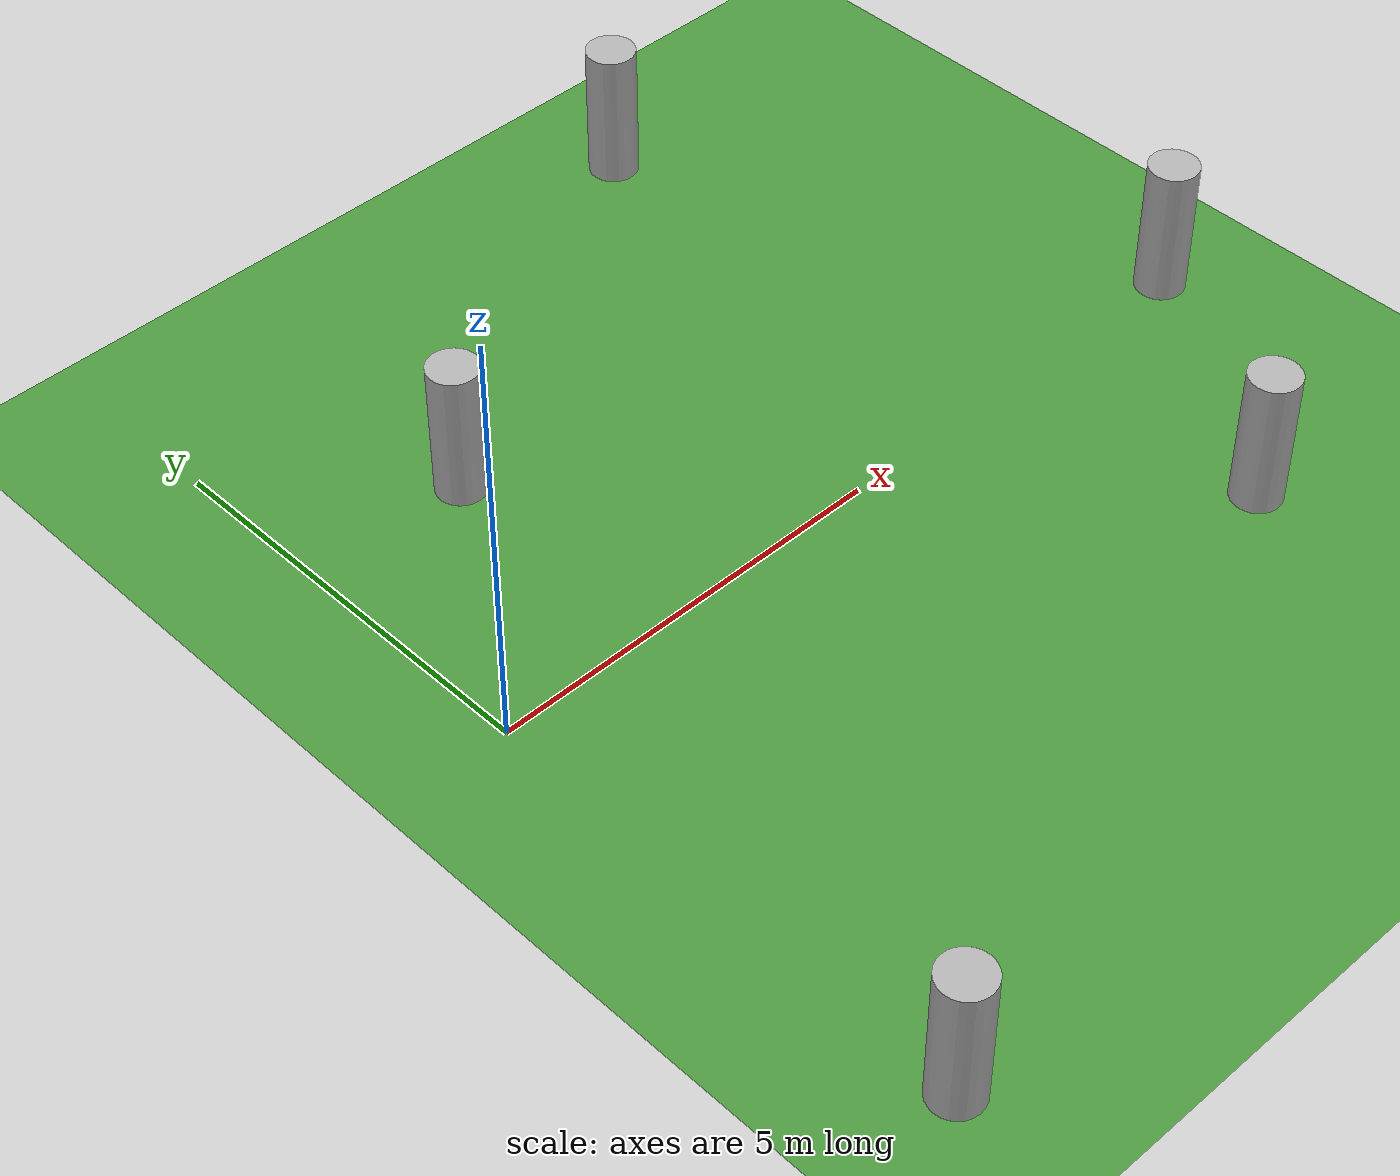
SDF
<sdf version="1.7">
 <world name="simple">
  <model name="ground_plane">
   <static>1</static>
   <link name="link">
    <collision name="collision">
     <geometry><plane><normal>0 0 1</normal><size>100 100</size></plane></geometry>
     <surface>
      <contact><collide_bitmask>65535</collide_bitmask></contact>
      <friction><ode><mu>100</mu><mu2>50</mu2></ode></friction>
     </surface>
    </collision>
    <visual name="visual">
     <cast_shadows>0</cast_shadows>
     <geometry><plane><normal>0 0 1</normal><size>100 100</size></plane></geometry>
     <material>
      <script><uri>file://media/materials/scripts/gazebo.material</uri><name>Gazebo/Grass</name></script>
     </material>
    </visual>
   </link>
  </model>
  <model name="ped_1">
   <pose>7 6 0.85 0 0 0</pose>
   <link name="link">
    <inertial>
     <mass>1</mass>
     <inertia><ixx>0.145833</ixx><ixy>0</ixy><ixz>0</ixz><iyy>0.145833</iyy><iyz>0</iyz><izz>0.125</izz></inertia>
    </inertial>
    <visual name="visual">
     <geometry><cylinder><radius>0.3</radius><length>1.7</length></cylinder></geometry>
     <material>
      <script><name>Gazebo/PioneerBody</name><uri>file://media/materials/scripts/gazebo.material</uri></script>
      <shader type="pixel"><normal_map>__default__</normal_map></shader>
      <ambient>0.3 0.3 0.3 1</ambient>
      <diffuse>0.7 0.7 0.7 1</diffuse>
      <specular>0.01 0.01 0.01 1</specular>
      <emissive>0 0 0 1</emissive>
     </material>
    </visual>
    <collision name="collision">
     <geometry><cylinder><radius>0.3</radius><length>1.7</length></cylinder></geometry>
     <surface>
      <friction>
       <ode><mu>1</mu><mu2>1</mu2><fdir1>0 0 0</fdir1><slip1>0</slip1><slip2>0</slip2></ode>
       <torsional>
        <coefficient>1</coefficient>
        <patch_radius>0</patch_radius>
        <surface_radius>0</surface_radius>
        <use_patch_radius>1</use_patch_radius>
        <ode><slip>0</slip></ode>
       </torsional>
      </friction>
      <bounce><restitution_coefficient>0</restitution_coefficient><threshold>1e+06</threshold></bounce>
      <contact>
       <collide_without_contact>0</collide_without_contact>
       <collide_without_contact_bitmask>1</collide_without_contact_bitmask>
       <collide_bitmask>1</collide_bitmask>
       <ode>
        <soft_cfm>0</soft_cfm>
        <soft_erp>0.2</soft_erp>
        <kp>1e+13</kp>
        <kd>1</kd>
        <max_vel>0.01</max_vel>
        <min_depth>0</min_depth>
       </ode>
       <bullet>
        <split_impulse>1</split_impulse>
        <split_impulse_penetration_threshold>-0.01</split_impulse_penetration_threshold>
        <soft_cfm>0</soft_cfm>
        <soft_erp>0.2</soft_erp>
        <kp>1e+13</kp>
        <kd>1</kd>
       </bullet>
      </contact>
     </surface>
    </collision>
   </link>
   <static>1</static>
   <plugin name="model_move_1" filename="libmodel_move.so">
    <goals>
     <pose>0 6 0.85 0 0 0</pose>
     <pose>7 6 0.85 0 0 0</pose>
     <pose>0 6 0.85 0 0 0</pose>
     <pose>7 6 0.85 0 0 0</pose>
     <pose>0 6 0.85 0 0 0</pose>
     <pose>7 6 0.85 0 0 0</pose>
     <pose>0 6 0.85 0 0 0</pose>
     <pose>7 6 0.85 0 0 0</pose>
     <pose>0 6 0.85 0 0 0</pose>
     <pose>7 6 0.85 0 0 0</pose>
    </goals>
   </plugin>
   <plugin name="gazebo_ros_p3d_1" filename="libgazebo_ros_p3d.so">
    <ros><namespace>crowd</namespace><remapping>odom:=ped_1</remapping></ros>
    <body_name>link</body_name>
    <update_rate>10</update_rate>
    <xyz_offset>0 0 0</xyz_offset>
    <rpy_offset>0 0 0</rpy_offset>
    <gaussian_noise>0.00</gaussian_noise>
   </plugin>
  </model>
  <model name="ped_2">
   <pose>2 3 0.85 0 0 0</pose>
   <link name="link">
    <inertial>
     <mass>1</mass>
     <inertia><ixx>0.145833</ixx><ixy>0</ixy><ixz>0</ixz><iyy>0.145833</iyy><iyz>0</iyz><izz>0.125</izz></inertia>
    </inertial>
    <visual name="visual">
     <geometry><cylinder><radius>0.3</radius><length>1.7</length></cylinder></geometry>
     <material>
      <script><name>Gazebo/PioneerBody</name><uri>file://media/materials/scripts/gazebo.material</uri></script>
      <shader type="pixel"><normal_map>__default__</normal_map></shader>
      <ambient>0.3 0.3 0.3 1</ambient>
      <diffuse>0.7 0.7 0.7 1</diffuse>
      <specular>0.01 0.01 0.01 1</specular>
      <emissive>0 0 0 1</emissive>
     </material>
    </visual>
    <collision name="collision">
     <geometry><cylinder><radius>0.3</radius><length>1.7</length></cylinder></geometry>
     <surface>
      <friction>
       <ode><mu>1</mu><mu2>1</mu2><fdir1>0 0 0</fdir1><slip1>0</slip1><slip2>0</slip2></ode>
       <torsional>
        <coefficient>1</coefficient>
        <patch_radius>0</patch_radius>
        <surface_radius>0</surface_radius>
        <use_patch_radius>1</use_patch_radius>
        <ode><slip>0</slip></ode>
       </torsional>
      </friction>
      <bounce><restitution_coefficient>0</restitution_coefficient><threshold>1e+06</threshold></bounce>
      <contact>
       <collide_without_contact>0</collide_without_contact>
       <collide_without_contact_bitmask>1</collide_without_contact_bitmask>
       <collide_bitmask>1</collide_bitmask>
       <ode>
        <soft_cfm>0</soft_cfm>
        <soft_erp>0.2</soft_erp>
        <kp>1e+13</kp>
        <kd>1</kd>
        <max_vel>0.01</max_vel>
        <min_depth>0</min_depth>
       </ode>
       <bullet>
        <split_impulse>1</split_impulse>
        <split_impulse_penetration_threshold>-0.01</split_impulse_penetration_threshold>
        <soft_cfm>0</soft_cfm>
        <soft_erp>0.2</soft_erp>
        <kp>1e+13</kp>
        <kd>1</kd>
       </bullet>
      </contact>
     </surface>
    </collision>
   </link>
   <static>1</static>
   <plugin name="model_move_2" filename="libmodel_move.so">
    <goals>
     <pose>8 3 0.85 0 0 0</pose>
     <pose>2 3 0.85 0 0 0</pose>
     <pose>8 3 0.85 0 0 0</pose>
     <pose>2 3 0.85 0 0 0</pose>
     <pose>8 3 0.85 0 0 0</pose>
     <pose>2 3 0.85 0 0 0</pose>
     <pose>8 3 0.85 0 0 0</pose>
     <pose>2 3 0.85 0 0 0</pose>
     <pose>8 3 0.85 0 0 0</pose>
     <pose>2 3 0.85 0 0 0</pose>
    </goals>
   </plugin>
   <plugin name="gazebo_ros_p3d_2" filename="libgazebo_ros_p3d.so">
    <ros><namespace>crowd</namespace><remapping>odom:=ped_2</remapping></ros>
    <body_name>link</body_name>
    <update_rate>10</update_rate>
    <xyz_offset>0 0 0</xyz_offset>
    <rpy_offset>0 0 0</rpy_offset>
    <gaussian_noise>0.00</gaussian_noise>
   </plugin>
  </model>
  <model name="ped_3">
   <pose>10 0 0.85 0 0 0</pose>
   <link name="link">
    <inertial>
     <mass>1</mass>
     <inertia><ixx>0.145833</ixx><ixy>0</ixy><ixz>0</ixz><iyy>0.145833</iyy><iyz>0</iyz><izz>0.125</izz></inertia>
    </inertial>
    <visual name="visual">
     <geometry><cylinder><radius>0.3</radius><length>1.7</length></cylinder></geometry>
     <material>
      <script><name>Gazebo/PioneerBody</name><uri>file://media/materials/scripts/gazebo.material</uri></script>
      <shader type="pixel"><normal_map>__default__</normal_map></shader>
      <ambient>0.3 0.3 0.3 1</ambient>
      <diffuse>0.7 0.7 0.7 1</diffuse>
      <specular>0.01 0.01 0.01 1</specular>
      <emissive>0 0 0 1</emissive>
     </material>
    </visual>
    <collision name="collision">
     <geometry><cylinder><radius>0.3</radius><length>1.7</length></cylinder></geometry>
     <surface>
      <friction>
       <ode><mu>1</mu><mu2>1</mu2><fdir1>0 0 0</fdir1><slip1>0</slip1><slip2>0</slip2></ode>
       <torsional>
        <coefficient>1</coefficient>
        <patch_radius>0</patch_radius>
        <surface_radius>0</surface_radius>
        <use_patch_radius>1</use_patch_radius>
        <ode><slip>0</slip></ode>
       </torsional>
      </friction>
      <bounce><restitution_coefficient>0</restitution_coefficient><threshold>1e+06</threshold></bounce>
      <contact>
       <collide_without_contact>0</collide_without_contact>
       <collide_without_contact_bitmask>1</collide_without_contact_bitmask>
       <collide_bitmask>1</collide_bitmask>
       <ode>
        <soft_cfm>0</soft_cfm>
        <soft_erp>0.2</soft_erp>
        <kp>1e+13</kp>
        <kd>1</kd>
        <max_vel>0.01</max_vel>
        <min_depth>0</min_depth>
       </ode>
       <bullet>
        <split_impulse>1</split_impulse>
        <split_impulse_penetration_threshold>-0.01</split_impulse_penetration_threshold>
        <soft_cfm>0</soft_cfm>
        <soft_erp>0.2</soft_erp>
        <kp>1e+13</kp>
        <kd>1</kd>
       </bullet>
      </contact>
     </surface>
    </collision>
   </link>
   <static>1</static>
   <plugin name="model_move_3" filename="libmodel_move.so">
    <goals>
     <pose>3 0 0.85 0 0 0</pose>
     <pose>10 0 0.85 0 0 0</pose>
     <pose>3 0 0.85 0 0 0</pose>
     <pose>10 0 0.85 0 0 0</pose>
     <pose>3 0 0.85 0 0 0</pose>
     <pose>10 0 0.85 0 0 0</pose>
     <pose>3 0 0.85 0 0 0</pose>
     <pose>10 0 0.85 0 0 0</pose>
     <pose>3 0 0.85 0 0 0</pose>
     <pose>10 0 0.85 0 0 0</pose>
    </goals>
   </plugin>
   <plugin name="gazebo_ros_p3d_3" filename="libgazebo_ros_p3d.so">
    <ros><namespace>crowd</namespace><remapping>odom:=ped_3</remapping></ros>
    <body_name>link</body_name>
    <update_rate>10</update_rate>
    <xyz_offset>0 0 0</xyz_offset>
    <rpy_offset>0 0 0</rpy_offset>
    <gaussian_noise>0.00</gaussian_noise>
   </plugin>
  </model>
  <model name="ped_4">
   <pose>8 -3 0.85 0 0 0</pose>
   <link name="link">
    <inertial>
     <mass>1</mass>
     <inertia><ixx>0.145833</ixx><ixy>0</ixy><ixz>0</ixz><iyy>0.145833</iyy><iyz>0</iyz><izz>0.125</izz></inertia>
    </inertial>
    <visual name="visual">
     <geometry><cylinder><radius>0.3</radius><length>1.7</length></cylinder></geometry>
     <material>
      <script><name>Gazebo/PioneerBody</name><uri>file://media/materials/scripts/gazebo.material</uri></script>
      <shader type="pixel"><normal_map>__default__</normal_map></shader>
      <ambient>0.3 0.3 0.3 1</ambient>
      <diffuse>0.7 0.7 0.7 1</diffuse>
      <specular>0.01 0.01 0.01 1</specular>
      <emissive>0 0 0 1</emissive>
     </material>
    </visual>
    <collision name="collision">
     <geometry><cylinder><radius>0.3</radius><length>1.7</length></cylinder></geometry>
     <surface>
      <friction>
       <ode><mu>1</mu><mu2>1</mu2><fdir1>0 0 0</fdir1><slip1>0</slip1><slip2>0</slip2></ode>
       <torsional>
        <coefficient>1</coefficient>
        <patch_radius>0</patch_radius>
        <surface_radius>0</surface_radius>
        <use_patch_radius>1</use_patch_radius>
        <ode><slip>0</slip></ode>
       </torsional>
      </friction>
      <bounce><restitution_coefficient>0</restitution_coefficient><threshold>1e+06</threshold></bounce>
      <contact>
       <collide_without_contact>0</collide_without_contact>
       <collide_without_contact_bitmask>1</collide_without_contact_bitmask>
       <collide_bitmask>1</collide_bitmask>
       <ode>
        <soft_cfm>0</soft_cfm>
        <soft_erp>0.2</soft_erp>
        <kp>1e+13</kp>
        <kd>1</kd>
        <max_vel>0.01</max_vel>
        <min_depth>0</min_depth>
       </ode>
       <bullet>
        <split_impulse>1</split_impulse>
        <split_impulse_penetration_threshold>-0.01</split_impulse_penetration_threshold>
        <soft_cfm>0</soft_cfm>
        <soft_erp>0.2</soft_erp>
        <kp>1e+13</kp>
        <kd>1</kd>
       </bullet>
      </contact>
     </surface>
    </collision>
   </link>
   <static>1</static>
   <plugin name="model_move_4" filename="libmodel_move.so">
    <goals>
     <pose>2 -3 0.85 0 0 0</pose>
     <pose>8 -3 0.85 0 0 0</pose>
     <pose>2 -3 0.85 0 0 0</pose>
     <pose>8 -3 0.85 0 0 0</pose>
     <pose>2 -3 0.85 0 0 0</pose>
     <pose>8 -3 0.85 0 0 0</pose>
     <pose>2 -3 0.85 0 0 0</pose>
     <pose>8 -3 0.85 0 0 0</pose>
     <pose>2 -3 0.85 0 0 0</pose>
     <pose>8 -3 0.85 0 0 0</pose>
    </goals>
   </plugin>
   <plugin name="gazebo_ros_p3d_4" filename="libgazebo_ros_p3d.so">
    <ros><namespace>crowd</namespace><remapping>odom:=ped_4</remapping></ros>
    <body_name>link</body_name>
    <update_rate>10</update_rate>
    <xyz_offset>0 0 0</xyz_offset>
    <rpy_offset>0 0 0</rpy_offset>
    <gaussian_noise>0.00</gaussian_noise>
   </plugin>
  </model>
  <model name="ped_5">
   <pose>0 -6 0.85 0 0 0</pose>
   <link name="link">
    <inertial>
     <mass>1</mass>
     <inertia><ixx>0.145833</ixx><ixy>0</ixy><ixz>0</ixz><iyy>0.145833</iyy><iyz>0</iyz><izz>0.125</izz></inertia>
    </inertial>
    <visual name="visual">
     <geometry><cylinder><radius>0.3</radius><length>1.7</length></cylinder></geometry>
     <material>
      <script><name>Gazebo/PioneerBody</name><uri>file://media/materials/scripts/gazebo.material</uri></script>
      <shader type="pixel"><normal_map>__default__</normal_map></shader>
      <ambient>0.3 0.3 0.3 1</ambient>
      <diffuse>0.7 0.7 0.7 1</diffuse>
      <specular>0.01 0.01 0.01 1</specular>
      <emissive>0 0 0 1</emissive>
     </material>
    </visual>
    <collision name="collision">
     <geometry><cylinder><radius>0.3</radius><length>1.7</length></cylinder></geometry>
     <surface>
      <friction>
       <ode><mu>1</mu><mu2>1</mu2><fdir1>0 0 0</fdir1><slip1>0</slip1><slip2>0</slip2></ode>
       <torsional>
        <coefficient>1</coefficient>
        <patch_radius>0</patch_radius>
        <surface_radius>0</surface_radius>
        <use_patch_radius>1</use_patch_radius>
        <ode><slip>0</slip></ode>
       </torsional>
      </friction>
      <bounce><restitution_coefficient>0</restitution_coefficient><threshold>1e+06</threshold></bounce>
      <contact>
       <collide_without_contact>0</collide_without_contact>
       <collide_without_contact_bitmask>1</collide_without_contact_bitmask>
       <collide_bitmask>1</collide_bitmask>
       <ode>
        <soft_cfm>0</soft_cfm>
        <soft_erp>0.2</soft_erp>
        <kp>1e+13</kp>
        <kd>1</kd>
        <max_vel>0.01</max_vel>
        <min_depth>0</min_depth>
       </ode>
       <bullet>
        <split_impulse>1</split_impulse>
        <split_impulse_penetration_threshold>-0.01</split_impulse_penetration_threshold>
        <soft_cfm>0</soft_cfm>
        <soft_erp>0.2</soft_erp>
        <kp>1e+13</kp>
        <kd>1</kd>
       </bullet>
      </contact>
     </surface>
    </collision>
   </link>
   <static>1</static>
   <plugin name="model_move_5" filename="libmodel_move.so">
    <goals>
     <pose>7 -6 0.85 0 0 0</pose>
     <pose>0 -6 0.85 0 0 0</pose>
     <pose>7 -6 0.85 0 0 0</pose>
     <pose>0 -6 0.85 0 0 0</pose>
     <pose>7 -6 0.85 0 0 0</pose>
     <pose>0 -6 0.85 0 0 0</pose>
     <pose>7 -6 0.85 0 0 0</pose>
     <pose>0 -6 0.85 0 0 0</pose>
     <pose>7 -6 0.85 0 0 0</pose>
     <pose>0 -6 0.85 0 0 0</pose>
    </goals>
   </plugin>
   <plugin name="gazebo_ros_p3d_5" filename="libgazebo_ros_p3d.so">
    <ros><namespace>crowd</namespace><remapping>odom:=ped_5</remapping></ros>
    <body_name>link</body_name>
    <update_rate>10</update_rate>
    <xyz_offset>0 0 0</xyz_offset>
    <rpy_offset>0 0 0</rpy_offset>
    <gaussian_noise>0.00</gaussian_noise>
   </plugin>
  </model>
  <light name="sun" type="directional">
   <pose>0 0 10 0 -0 0</pose>
   <diffuse>0.8 0.8 0.8 1</diffuse>
   <specular>0.2 0.2 0.2 1</specular>
   <attenuation>
    <range>1000</range>
    <constant>0.9</constant>
    <linear>0.01</linear>
    <quadratic>0.001</quadratic>
   </attenuation>
   <direction>-0.5 0.1 -0.9</direction>
   <spot><inner_angle>0</inner_angle><outer_angle>0</outer_angle><falloff>0</falloff></spot>
  </light>
  <gravity>0 0 -9.8</gravity>
  <magnetic_field>6e-06 2.3e-05 -4.2e-05</magnetic_field>
  <atmosphere type="adiabatic"/>
  <physics type="ode">
   <max_step_size>0.001</max_step_size>
   <real_time_factor>1</real_time_factor>
   <real_time_update_rate>1000</real_time_update_rate>
  </physics>
  <scene><ambient>0.4 0.4 0.4 1</ambient><background>0.7 0.7 0.7 1</background><shadows>0</shadows></scene>
  <spherical_coordinates>
   <surface_model>EARTH_WGS84</surface_model>
   <latitude_deg>59.89</latitude_deg>
   <longitude_deg>30.25</longitude_deg>
   <elevation>33</elevation>
   <heading_deg>180</heading_deg>
  </spherical_coordinates>
 </world>
</sdf>
